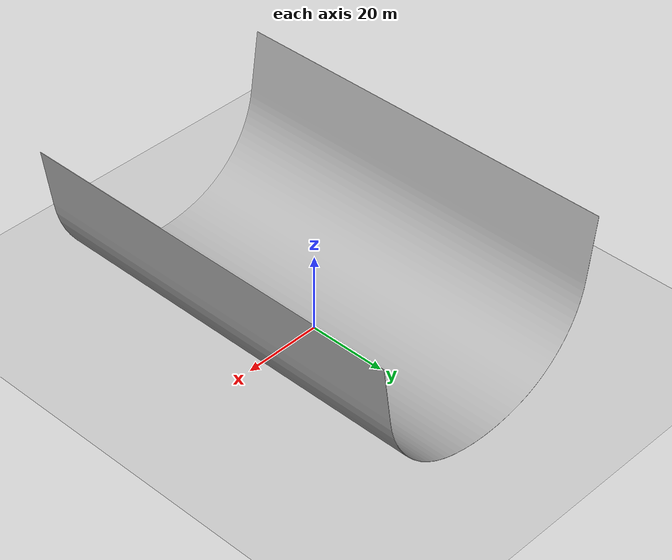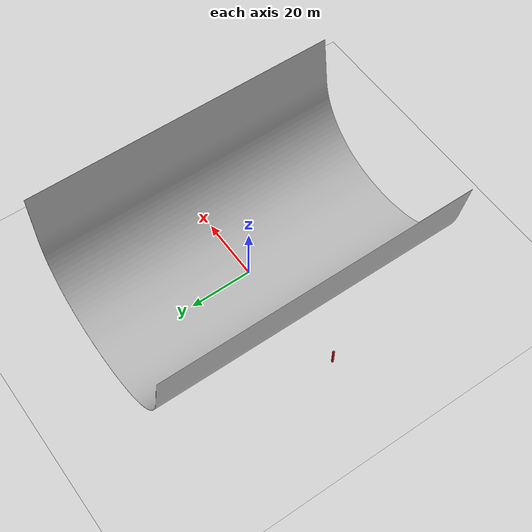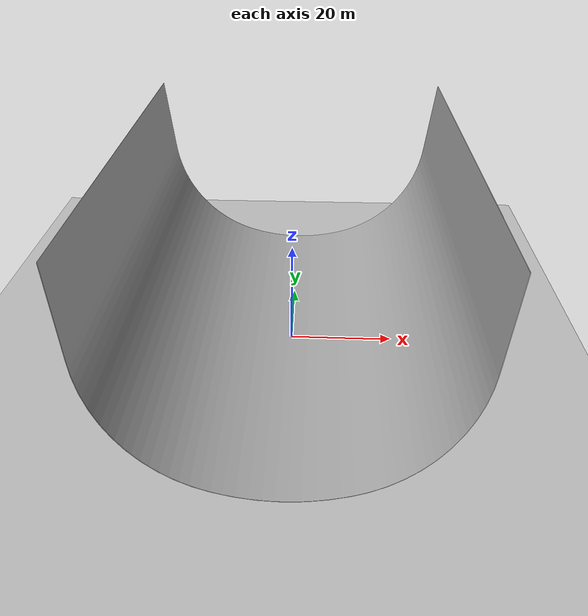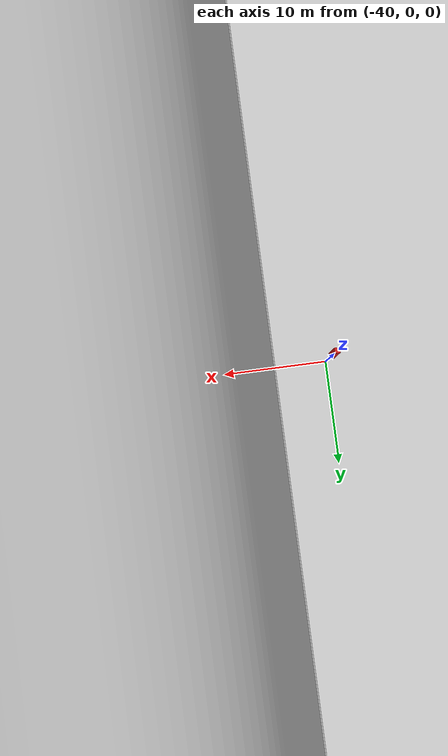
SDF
<?xml version="1.0" ?>
<sdf version="1.7">
  <world name="spray_world">

    <!-- 必要系统：物理、场景广播、传感器 -->
    <plugin filename="libignition-gazebo-physics-system.so"
            name="ignition::gazebo::systems::Physics"/>

    <plugin filename="libignition-gazebo-scene-broadcaster-system.so"
            name="ignition::gazebo::systems::SceneBroadcaster"/>

    <plugin filename="libignition-gazebo-sensors-system.so"
            name="ignition::gazebo::systems::Sensors"/>

    <!-- 光源 -->
    <include>
      <uri>https://fuel.gazebosim.org/1.0/OpenRobotics/models/Sun</uri>
    </include>

    <!-- 地面 -->
    <include>
      <uri>https://fuel.gazebosim.org/1.0/OpenRobotics/models/Ground Plane</uri>
    </include>

    <!-- 船体：使用 SolidWorks 导出的 STL 作为 visual -->
    <model name="ship_hull">
      <static>true</static>

      <!-- 位置姿态沿用你之前的圆柱体 pose（按需微调） -->
      <pose>0 0 0 0 0 0</pose>

      <link name="ship_hull_base">

        <!-- 可视化：高精度 STL -->
        <visual name="ship_hull_visual">
          <geometry>
            <mesh>
              <uri>../meshes/ship_hull.STL</uri>
              <!-- 如果导出单位不是米/或比例不对，在这里改 -->
              <scale>1 1 1</scale>
            </mesh>
          </geometry>

          <!-- 给个简单材质，避免一片黑 -->
          <material>
            <ambient>0.7 0.7 0.7 1</ambient>
            <diffuse>0.7 0.7 0.7 1</diffuse>
            <specular>0.1 0.1 0.1 1</specular>
          </material>
        </visual>

      </link>
    </model>

    <!-- 喷涂系统基座 + 雷达 -->
    <model name="spray_base">
      <static>true</static>
      <pose>-40 0 10 0 0 0</pose>
      <link name="base_link">
        <visual name="base_visual">
          <geometry>
            <box>
              <size>0.5 0.5 6</size>
            </box>
          </geometry>

          <material>
            <ambient>0.6 0.1 0.1</ambient>
            <diffuse>0.8 0.1 0.1</diffuse>
            <specular>0.2 0.2 0.2</specular>

          </material>
        </visual>

        <!-- GPU LiDAR（top） -->
        <sensor name="lidar_top" type="gpu_lidar">
          <pose>0 0 6 0 0 0</pose>
          <update_rate>10</update_rate>

          <!-- Gazebo 内部 topic -->
          <topic>/lidar/top</topic>

          <lidar>
            <scan>
              <!-- 水平 360° -->
              <horizontal>
                <samples>2048</samples>
                <min_angle>-3.14159</min_angle>
                <max_angle> 3.14159</max_angle>
              </horizontal>

              <!-- 竖直 -7° ~ +52° -->
              <vertical>
                <samples>64</samples>
                <min_angle>-0.122</min_angle>
                <max_angle> 0.907</max_angle>
              </vertical>
            </scan>

            <!-- 量程 0.1m ~ 40m -->
            <range>
              <min>0.1</min>
              <max>40.0</max>
            </range>
          </lidar>
        </sensor>

        <!-- GPU LiDAR（bottom） -->
        <sensor name="lidar_bottom" type="gpu_lidar">
          <pose>0 0 0 0 0 0</pose>
          <update_rate>10</update_rate>

          <!-- Gazebo 内部 topic -->
          <topic>/lidar/bottom</topic>

          <lidar>
            <scan>
              <!-- 水平 360° -->
              <horizontal>
                <samples>2048</samples>
                <min_angle>-3.14159</min_angle>
                <max_angle> 3.14159</max_angle>
              </horizontal>

              <!-- 竖直 -7° ~ +52° -->
              <vertical>
                <samples>64</samples>
                <min_angle>-0.122</min_angle>
                <max_angle> 0.907</max_angle>
              </vertical>
            </scan>

            <!-- 量程 0.1m ~ 40m -->
            <range>
              <min>0.1</min>
              <max>40.0</max>
            </range>
          </lidar>
        </sensor>

      </link>
    </model>

  </world>
</sdf>
